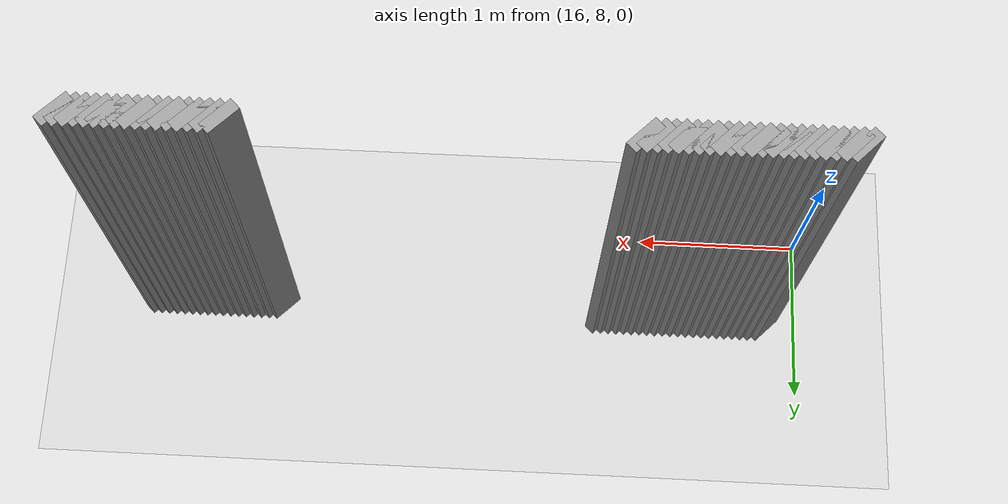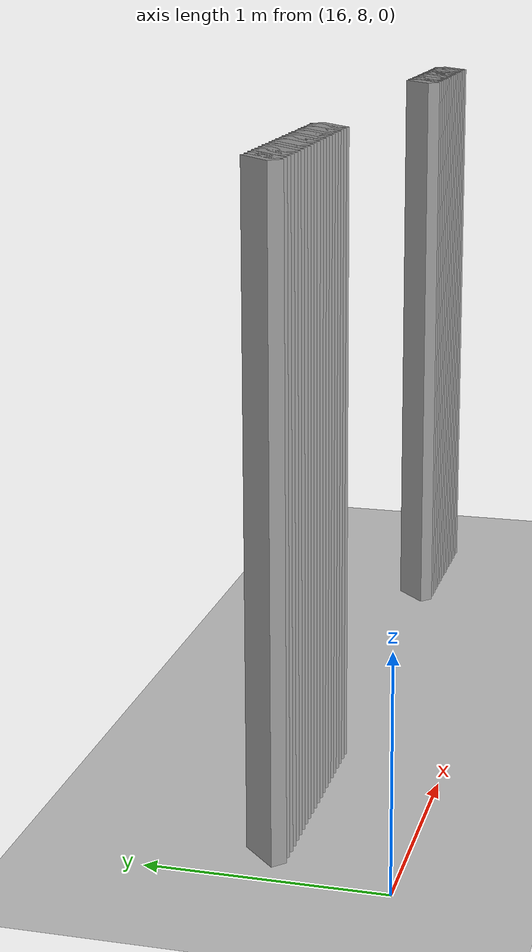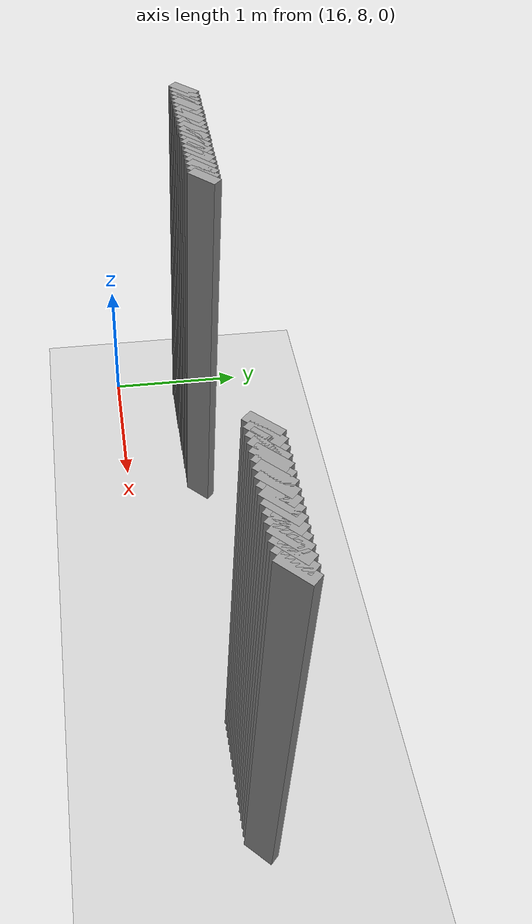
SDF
<sdf version="1.5">
 <world name="default">
  <include><uri>model://ground_plane</uri></include>
  <include><uri>model://sun</uri></include>
  <model name="grey_wall_3939">
   <static>1</static>
   <link name="link">
    <pose>16.2 8.55  1.4 0 0 -0.785398163397</pose>
    <collision name="collision"><geometry><box><size>0.0707106781187 .2  2.8</size></box></geometry></collision>
    <visual name="visual">
     <cast_shadows>0</cast_shadows>
     <geometry><box><size>0.0707106781187 .2  2.8</size></box></geometry>
     <material>
      <script>
       <uri>model://grey_wall/materials/scripts</uri>
       <uri>model://grey_wall/materials/textures</uri>
       <name>vrc/grey_wall</name>
      </script>
     </material>
    </visual>
   </link>
  </model>
  <model name="grey_wall_3940">
   <static>1</static>
   <link name="link">
    <pose>16.25 8.55  1.4 0 0 -0.785398163397</pose>
    <collision name="collision"><geometry><box><size>0.0707106781187 .2  2.8</size></box></geometry></collision>
    <visual name="visual">
     <cast_shadows>0</cast_shadows>
     <geometry><box><size>0.0707106781187 .2  2.8</size></box></geometry>
     <material>
      <script>
       <uri>model://grey_wall/materials/scripts</uri>
       <uri>model://grey_wall/materials/textures</uri>
       <name>vrc/grey_wall</name>
      </script>
     </material>
    </visual>
   </link>
  </model>
  <model name="grey_wall_3941">
   <static>1</static>
   <link name="link">
    <pose>16.3 8.55  1.4 0 0 -0.785398163397</pose>
    <collision name="collision"><geometry><box><size>0.0707106781187 .2  2.8</size></box></geometry></collision>
    <visual name="visual">
     <cast_shadows>0</cast_shadows>
     <geometry><box><size>0.0707106781187 .2  2.8</size></box></geometry>
     <material>
      <script>
       <uri>model://grey_wall/materials/scripts</uri>
       <uri>model://grey_wall/materials/textures</uri>
       <name>vrc/grey_wall</name>
      </script>
     </material>
    </visual>
   </link>
  </model>
  <model name="grey_wall_3942">
   <static>1</static>
   <link name="link">
    <pose>16.35 8.55  1.4 0 0 -0.785398163397</pose>
    <collision name="collision"><geometry><box><size>0.0707106781187 .2  2.8</size></box></geometry></collision>
    <visual name="visual">
     <cast_shadows>0</cast_shadows>
     <geometry><box><size>0.0707106781187 .2  2.8</size></box></geometry>
     <material>
      <script>
       <uri>model://grey_wall/materials/scripts</uri>
       <uri>model://grey_wall/materials/textures</uri>
       <name>vrc/grey_wall</name>
      </script>
     </material>
    </visual>
   </link>
  </model>
  <model name="grey_wall_3943">
   <static>1</static>
   <link name="link">
    <pose>16.4 8.55  1.4 0 0 -0.785398163397</pose>
    <collision name="collision"><geometry><box><size>0.0707106781187 .2  2.8</size></box></geometry></collision>
    <visual name="visual">
     <cast_shadows>0</cast_shadows>
     <geometry><box><size>0.0707106781187 .2  2.8</size></box></geometry>
     <material>
      <script>
       <uri>model://grey_wall/materials/scripts</uri>
       <uri>model://grey_wall/materials/textures</uri>
       <name>vrc/grey_wall</name>
      </script>
     </material>
    </visual>
   </link>
  </model>
  <model name="grey_wall_3944">
   <static>1</static>
   <link name="link">
    <pose>16.45 8.55  1.4 0 0 -0.785398163397</pose>
    <collision name="collision"><geometry><box><size>0.0707106781187 .2  2.8</size></box></geometry></collision>
    <visual name="visual">
     <cast_shadows>0</cast_shadows>
     <geometry><box><size>0.0707106781187 .2  2.8</size></box></geometry>
     <material>
      <script>
       <uri>model://grey_wall/materials/scripts</uri>
       <uri>model://grey_wall/materials/textures</uri>
       <name>vrc/grey_wall</name>
      </script>
     </material>
    </visual>
   </link>
  </model>
  <model name="grey_wall_3945">
   <static>1</static>
   <link name="link">
    <pose>16.5 8.55  1.4 0 0 -0.785398163397</pose>
    <collision name="collision"><geometry><box><size>0.0707106781187 .2  2.8</size></box></geometry></collision>
    <visual name="visual">
     <cast_shadows>0</cast_shadows>
     <geometry><box><size>0.0707106781187 .2  2.8</size></box></geometry>
     <material>
      <script>
       <uri>model://grey_wall/materials/scripts</uri>
       <uri>model://grey_wall/materials/textures</uri>
       <name>vrc/grey_wall</name>
      </script>
     </material>
    </visual>
   </link>
  </model>
  <model name="grey_wall_3946">
   <static>1</static>
   <link name="link">
    <pose>16.55 8.55  1.4 0 0 -0.785398163397</pose>
    <collision name="collision"><geometry><box><size>0.0707106781187 .2  2.8</size></box></geometry></collision>
    <visual name="visual">
     <cast_shadows>0</cast_shadows>
     <geometry><box><size>0.0707106781187 .2  2.8</size></box></geometry>
     <material>
      <script>
       <uri>model://grey_wall/materials/scripts</uri>
       <uri>model://grey_wall/materials/textures</uri>
       <name>vrc/grey_wall</name>
      </script>
     </material>
    </visual>
   </link>
  </model>
  <model name="grey_wall_3947">
   <static>1</static>
   <link name="link">
    <pose>16.6 8.55  1.4 0 0 -0.785398163397</pose>
    <collision name="collision"><geometry><box><size>0.0707106781187 .2  2.8</size></box></geometry></collision>
    <visual name="visual">
     <cast_shadows>0</cast_shadows>
     <geometry><box><size>0.0707106781187 .2  2.8</size></box></geometry>
     <material>
      <script>
       <uri>model://grey_wall/materials/scripts</uri>
       <uri>model://grey_wall/materials/textures</uri>
       <name>vrc/grey_wall</name>
      </script>
     </material>
    </visual>
   </link>
  </model>
  <model name="grey_wall_3948">
   <static>1</static>
   <link name="link">
    <pose>16.65 8.55  1.4 0 0 -0.785398163397</pose>
    <collision name="collision"><geometry><box><size>0.0707106781187 .2  2.8</size></box></geometry></collision>
    <visual name="visual">
     <cast_shadows>0</cast_shadows>
     <geometry><box><size>0.0707106781187 .2  2.8</size></box></geometry>
     <material>
      <script>
       <uri>model://grey_wall/materials/scripts</uri>
       <uri>model://grey_wall/materials/textures</uri>
       <name>vrc/grey_wall</name>
      </script>
     </material>
    </visual>
   </link>
  </model>
  <model name="grey_wall_3949">
   <static>1</static>
   <link name="link">
    <pose>16.7 8.55  1.4 0 0 -0.785398163397</pose>
    <collision name="collision"><geometry><box><size>0.0707106781187 .2  2.8</size></box></geometry></collision>
    <visual name="visual">
     <cast_shadows>0</cast_shadows>
     <geometry><box><size>0.0707106781187 .2  2.8</size></box></geometry>
     <material>
      <script>
       <uri>model://grey_wall/materials/scripts</uri>
       <uri>model://grey_wall/materials/textures</uri>
       <name>vrc/grey_wall</name>
      </script>
     </material>
    </visual>
   </link>
  </model>
  <model name="grey_wall_3950">
   <static>1</static>
   <link name="link">
    <pose>16.75 8.55  1.4 0 0 -0.785398163397</pose>
    <collision name="collision"><geometry><box><size>0.0707106781187 .2  2.8</size></box></geometry></collision>
    <visual name="visual">
     <cast_shadows>0</cast_shadows>
     <geometry><box><size>0.0707106781187 .2  2.8</size></box></geometry>
     <material>
      <script>
       <uri>model://grey_wall/materials/scripts</uri>
       <uri>model://grey_wall/materials/textures</uri>
       <name>vrc/grey_wall</name>
      </script>
     </material>
    </visual>
   </link>
  </model>
  <model name="grey_wall_3951">
   <static>1</static>
   <link name="link">
    <pose>16.8 8.55  1.4 0 0 -0.785398163397</pose>
    <collision name="collision"><geometry><box><size>0.0707106781187 .2  2.8</size></box></geometry></collision>
    <visual name="visual">
     <cast_shadows>0</cast_shadows>
     <geometry><box><size>0.0707106781187 .2  2.8</size></box></geometry>
     <material>
      <script>
       <uri>model://grey_wall/materials/scripts</uri>
       <uri>model://grey_wall/materials/textures</uri>
       <name>vrc/grey_wall</name>
      </script>
     </material>
    </visual>
   </link>
  </model>
  <model name="grey_wall_3952">
   <static>1</static>
   <link name="link">
    <pose>16.85 8.55  1.4 0 0 -0.785398163397</pose>
    <collision name="collision"><geometry><box><size>0.0707106781187 .2  2.8</size></box></geometry></collision>
    <visual name="visual">
     <cast_shadows>0</cast_shadows>
     <geometry><box><size>0.0707106781187 .2  2.8</size></box></geometry>
     <material>
      <script>
       <uri>model://grey_wall/materials/scripts</uri>
       <uri>model://grey_wall/materials/textures</uri>
       <name>vrc/grey_wall</name>
      </script>
     </material>
    </visual>
   </link>
  </model>
  <model name="grey_wall_3953">
   <static>1</static>
   <link name="link">
    <pose>16.9 8.55  1.4 0 0 -0.785398163397</pose>
    <collision name="collision"><geometry><box><size>0.0707106781187 .2  2.8</size></box></geometry></collision>
    <visual name="visual">
     <cast_shadows>0</cast_shadows>
     <geometry><box><size>0.0707106781187 .2  2.8</size></box></geometry>
     <material>
      <script>
       <uri>model://grey_wall/materials/scripts</uri>
       <uri>model://grey_wall/materials/textures</uri>
       <name>vrc/grey_wall</name>
      </script>
     </material>
    </visual>
   </link>
  </model>
  <model name="grey_wall_3954">
   <static>1</static>
   <link name="link">
    <pose>16.95 8.55  1.4 0 0 -0.785398163397</pose>
    <collision name="collision"><geometry><box><size>0.0707106781187 .2  2.8</size></box></geometry></collision>
    <visual name="visual">
     <cast_shadows>0</cast_shadows>
     <geometry><box><size>0.0707106781187 .2  2.8</size></box></geometry>
     <material>
      <script>
       <uri>model://grey_wall/materials/scripts</uri>
       <uri>model://grey_wall/materials/textures</uri>
       <name>vrc/grey_wall</name>
      </script>
     </material>
    </visual>
   </link>
  </model>
  <model name="grey_wall_3955">
   <static>1</static>
   <link name="link">
    <pose>17.0 8.55  1.4 0 0 -0.785398163397</pose>
    <collision name="collision"><geometry><box><size>0.0707106781187 .2  2.8</size></box></geometry></collision>
    <visual name="visual">
     <cast_shadows>0</cast_shadows>
     <geometry><box><size>0.0707106781187 .2  2.8</size></box></geometry>
     <material>
      <script>
       <uri>model://grey_wall/materials/scripts</uri>
       <uri>model://grey_wall/materials/textures</uri>
       <name>vrc/grey_wall</name>
      </script>
     </material>
    </visual>
   </link>
  </model>
  <model name="grey_wall_3956">
   <static>1</static>
   <link name="link">
    <pose>17.05 8.55  1.4 0 0 -0.785398163397</pose>
    <collision name="collision"><geometry><box><size>0.0707106781187 .2  2.8</size></box></geometry></collision>
    <visual name="visual">
     <cast_shadows>0</cast_shadows>
     <geometry><box><size>0.0707106781187 .2  2.8</size></box></geometry>
     <material>
      <script>
       <uri>model://grey_wall/materials/scripts</uri>
       <uri>model://grey_wall/materials/textures</uri>
       <name>vrc/grey_wall</name>
      </script>
     </material>
    </visual>
   </link>
  </model>
  <model name="grey_wall_3957">
   <static>1</static>
   <link name="link">
    <pose>17.1 8.55  1.4 0 0 -0.785398163397</pose>
    <collision name="collision"><geometry><box><size>0.0707106781187 .2  2.8</size></box></geometry></collision>
    <visual name="visual">
     <cast_shadows>0</cast_shadows>
     <geometry><box><size>0.0707106781187 .2  2.8</size></box></geometry>
     <material>
      <script>
       <uri>model://grey_wall/materials/scripts</uri>
       <uri>model://grey_wall/materials/textures</uri>
       <name>vrc/grey_wall</name>
      </script>
     </material>
    </visual>
   </link>
  </model>
  <model name="grey_wall_3958">
   <static>1</static>
   <link name="link">
    <pose>17.15 8.55  1.4 0 0 -0.785398163397</pose>
    <collision name="collision"><geometry><box><size>0.0707106781187 .2  2.8</size></box></geometry></collision>
    <visual name="visual">
     <cast_shadows>0</cast_shadows>
     <geometry><box><size>0.0707106781187 .2  2.8</size></box></geometry>
     <material>
      <script>
       <uri>model://grey_wall/materials/scripts</uri>
       <uri>model://grey_wall/materials/textures</uri>
       <name>vrc/grey_wall</name>
      </script>
     </material>
    </visual>
   </link>
  </model>
  <model name="grey_wall_3959">
   <static>1</static>
   <link name="link">
    <pose>17.2 8.55  1.4 0 0 -0.785398163397</pose>
    <collision name="collision"><geometry><box><size>0.0707106781187 .2  2.8</size></box></geometry></collision>
    <visual name="visual">
     <cast_shadows>0</cast_shadows>
     <geometry><box><size>0.0707106781187 .2  2.8</size></box></geometry>
     <material>
      <script>
       <uri>model://grey_wall/materials/scripts</uri>
       <uri>model://grey_wall/materials/textures</uri>
       <name>vrc/grey_wall</name>
      </script>
     </material>
    </visual>
   </link>
  </model>
  <model name="grey_wall_3960">
   <static>1</static>
   <link name="link">
    <pose>17.25 8.55  1.4 0 0 -0.785398163397</pose>
    <collision name="collision"><geometry><box><size>0.0707106781187 .2  2.8</size></box></geometry></collision>
    <visual name="visual">
     <cast_shadows>0</cast_shadows>
     <geometry><box><size>0.0707106781187 .2  2.8</size></box></geometry>
     <material>
      <script>
       <uri>model://grey_wall/materials/scripts</uri>
       <uri>model://grey_wall/materials/textures</uri>
       <name>vrc/grey_wall</name>
      </script>
     </material>
    </visual>
   </link>
  </model>
  <model name="grey_wall_3961">
   <static>1</static>
   <link name="link">
    <pose>19.3 8.55  1.4 0 0 -0.785398163397</pose>
    <collision name="collision"><geometry><box><size>0.0707106781187 .2  2.8</size></box></geometry></collision>
    <visual name="visual">
     <cast_shadows>0</cast_shadows>
     <geometry><box><size>0.0707106781187 .2  2.8</size></box></geometry>
     <material>
      <script>
       <uri>model://grey_wall/materials/scripts</uri>
       <uri>model://grey_wall/materials/textures</uri>
       <name>vrc/grey_wall</name>
      </script>
     </material>
    </visual>
   </link>
  </model>
  <model name="grey_wall_3962">
   <static>1</static>
   <link name="link">
    <pose>19.35 8.55  1.4 0 0 -0.785398163397</pose>
    <collision name="collision"><geometry><box><size>0.0707106781187 .2  2.8</size></box></geometry></collision>
    <visual name="visual">
     <cast_shadows>0</cast_shadows>
     <geometry><box><size>0.0707106781187 .2  2.8</size></box></geometry>
     <material>
      <script>
       <uri>model://grey_wall/materials/scripts</uri>
       <uri>model://grey_wall/materials/textures</uri>
       <name>vrc/grey_wall</name>
      </script>
     </material>
    </visual>
   </link>
  </model>
  <model name="grey_wall_3963">
   <static>1</static>
   <link name="link">
    <pose>19.4 8.55  1.4 0 0 -0.785398163397</pose>
    <collision name="collision"><geometry><box><size>0.0707106781187 .2  2.8</size></box></geometry></collision>
    <visual name="visual">
     <cast_shadows>0</cast_shadows>
     <geometry><box><size>0.0707106781187 .2  2.8</size></box></geometry>
     <material>
      <script>
       <uri>model://grey_wall/materials/scripts</uri>
       <uri>model://grey_wall/materials/textures</uri>
       <name>vrc/grey_wall</name>
      </script>
     </material>
    </visual>
   </link>
  </model>
  <model name="grey_wall_3964">
   <static>1</static>
   <link name="link">
    <pose>19.45 8.55  1.4 0 0 -0.785398163397</pose>
    <collision name="collision"><geometry><box><size>0.0707106781187 .2  2.8</size></box></geometry></collision>
    <visual name="visual">
     <cast_shadows>0</cast_shadows>
     <geometry><box><size>0.0707106781187 .2  2.8</size></box></geometry>
     <material>
      <script>
       <uri>model://grey_wall/materials/scripts</uri>
       <uri>model://grey_wall/materials/textures</uri>
       <name>vrc/grey_wall</name>
      </script>
     </material>
    </visual>
   </link>
  </model>
  <model name="grey_wall_3965">
   <static>1</static>
   <link name="link">
    <pose>19.5 8.55  1.4 0 0 -0.785398163397</pose>
    <collision name="collision"><geometry><box><size>0.0707106781187 .2  2.8</size></box></geometry></collision>
    <visual name="visual">
     <cast_shadows>0</cast_shadows>
     <geometry><box><size>0.0707106781187 .2  2.8</size></box></geometry>
     <material>
      <script>
       <uri>model://grey_wall/materials/scripts</uri>
       <uri>model://grey_wall/materials/textures</uri>
       <name>vrc/grey_wall</name>
      </script>
     </material>
    </visual>
   </link>
  </model>
  <model name="grey_wall_3966">
   <static>1</static>
   <link name="link">
    <pose>19.55 8.55  1.4 0 0 -0.785398163397</pose>
    <collision name="collision"><geometry><box><size>0.0707106781187 .2  2.8</size></box></geometry></collision>
    <visual name="visual">
     <cast_shadows>0</cast_shadows>
     <geometry><box><size>0.0707106781187 .2  2.8</size></box></geometry>
     <material>
      <script>
       <uri>model://grey_wall/materials/scripts</uri>
       <uri>model://grey_wall/materials/textures</uri>
       <name>vrc/grey_wall</name>
      </script>
     </material>
    </visual>
   </link>
  </model>
  <model name="grey_wall_3967">
   <static>1</static>
   <link name="link">
    <pose>19.6 8.55  1.4 0 0 -0.785398163397</pose>
    <collision name="collision"><geometry><box><size>0.0707106781187 .2  2.8</size></box></geometry></collision>
    <visual name="visual">
     <cast_shadows>0</cast_shadows>
     <geometry><box><size>0.0707106781187 .2  2.8</size></box></geometry>
     <material>
      <script>
       <uri>model://grey_wall/materials/scripts</uri>
       <uri>model://grey_wall/materials/textures</uri>
       <name>vrc/grey_wall</name>
      </script>
     </material>
    </visual>
   </link>
  </model>
  <model name="grey_wall_3968">
   <static>1</static>
   <link name="link">
    <pose>19.65 8.55  1.4 0 0 -0.785398163397</pose>
    <collision name="collision"><geometry><box><size>0.0707106781187 .2  2.8</size></box></geometry></collision>
    <visual name="visual">
     <cast_shadows>0</cast_shadows>
     <geometry><box><size>0.0707106781187 .2  2.8</size></box></geometry>
     <material>
      <script>
       <uri>model://grey_wall/materials/scripts</uri>
       <uri>model://grey_wall/materials/textures</uri>
       <name>vrc/grey_wall</name>
      </script>
     </material>
    </visual>
   </link>
  </model>
  <model name="grey_wall_3969">
   <static>1</static>
   <link name="link">
    <pose>19.7 8.55  1.4 0 0 -0.785398163397</pose>
    <collision name="collision"><geometry><box><size>0.0707106781187 .2  2.8</size></box></geometry></collision>
    <visual name="visual">
     <cast_shadows>0</cast_shadows>
     <geometry><box><size>0.0707106781187 .2  2.8</size></box></geometry>
     <material>
      <script>
       <uri>model://grey_wall/materials/scripts</uri>
       <uri>model://grey_wall/materials/textures</uri>
       <name>vrc/grey_wall</name>
      </script>
     </material>
    </visual>
   </link>
  </model>
  <model name="grey_wall_3970">
   <static>1</static>
   <link name="link">
    <pose>19.75 8.55  1.4 0 0 -0.785398163397</pose>
    <collision name="collision"><geometry><box><size>0.0707106781187 .2  2.8</size></box></geometry></collision>
    <visual name="visual">
     <cast_shadows>0</cast_shadows>
     <geometry><box><size>0.0707106781187 .2  2.8</size></box></geometry>
     <material>
      <script>
       <uri>model://grey_wall/materials/scripts</uri>
       <uri>model://grey_wall/materials/textures</uri>
       <name>vrc/grey_wall</name>
      </script>
     </material>
    </visual>
   </link>
  </model>
  <model name="grey_wall_3971">
   <static>1</static>
   <link name="link">
    <pose>19.8 8.55  1.4 0 0 -0.785398163397</pose>
    <collision name="collision"><geometry><box><size>0.0707106781187 .2  2.8</size></box></geometry></collision>
    <visual name="visual">
     <cast_shadows>0</cast_shadows>
     <geometry><box><size>0.0707106781187 .2  2.8</size></box></geometry>
     <material>
      <script>
       <uri>model://grey_wall/materials/scripts</uri>
       <uri>model://grey_wall/materials/textures</uri>
       <name>vrc/grey_wall</name>
      </script>
     </material>
    </visual>
   </link>
  </model>
  <model name="grey_wall_3972">
   <static>1</static>
   <link name="link">
    <pose>19.85 8.55  1.4 0 0 -0.785398163397</pose>
    <collision name="collision"><geometry><box><size>0.0707106781187 .2  2.8</size></box></geometry></collision>
    <visual name="visual">
     <cast_shadows>0</cast_shadows>
     <geometry><box><size>0.0707106781187 .2  2.8</size></box></geometry>
     <material>
      <script>
       <uri>model://grey_wall/materials/scripts</uri>
       <uri>model://grey_wall/materials/textures</uri>
       <name>vrc/grey_wall</name>
      </script>
     </material>
    </visual>
   </link>
  </model>
  <model name="grey_wall_3973">
   <static>1</static>
   <link name="link">
    <pose>19.9 8.55  1.4 0 0 -0.785398163397</pose>
    <collision name="collision"><geometry><box><size>0.0707106781187 .2  2.8</size></box></geometry></collision>
    <visual name="visual">
     <cast_shadows>0</cast_shadows>
     <geometry><box><size>0.0707106781187 .2  2.8</size></box></geometry>
     <material>
      <script>
       <uri>model://grey_wall/materials/scripts</uri>
       <uri>model://grey_wall/materials/textures</uri>
       <name>vrc/grey_wall</name>
      </script>
     </material>
    </visual>
   </link>
  </model>
  <model name="grey_wall_3974">
   <static>1</static>
   <link name="link">
    <pose>19.95 8.55  1.4 0 0 -0.785398163397</pose>
    <collision name="collision"><geometry><box><size>0.0707106781187 .2  2.8</size></box></geometry></collision>
    <visual name="visual">
     <cast_shadows>0</cast_shadows>
     <geometry><box><size>0.0707106781187 .2  2.8</size></box></geometry>
     <material>
      <script>
       <uri>model://grey_wall/materials/scripts</uri>
       <uri>model://grey_wall/materials/textures</uri>
       <name>vrc/grey_wall</name>
      </script>
     </material>
    </visual>
   </link>
  </model>
  <model name="grey_wall_3975">
   <static>1</static>
   <link name="link">
    <pose>20.0 8.55  1.4 0 0 -0.785398163397</pose>
    <collision name="collision"><geometry><box><size>0.0707106781187 .2  2.8</size></box></geometry></collision>
    <visual name="visual">
     <cast_shadows>0</cast_shadows>
     <geometry><box><size>0.0707106781187 .2  2.8</size></box></geometry>
     <material>
      <script>
       <uri>model://grey_wall/materials/scripts</uri>
       <uri>model://grey_wall/materials/textures</uri>
       <name>vrc/grey_wall</name>
      </script>
     </material>
    </visual>
   </link>
  </model>
  <model name="grey_wall_3976">
   <static>1</static>
   <link name="link">
    <pose>20.05 8.55  1.4 0 0 -0.785398163397</pose>
    <collision name="collision"><geometry><box><size>0.0707106781187 .2  2.8</size></box></geometry></collision>
    <visual name="visual">
     <cast_shadows>0</cast_shadows>
     <geometry><box><size>0.0707106781187 .2  2.8</size></box></geometry>
     <material>
      <script>
       <uri>model://grey_wall/materials/scripts</uri>
       <uri>model://grey_wall/materials/textures</uri>
       <name>vrc/grey_wall</name>
      </script>
     </material>
    </visual>
   </link>
  </model>
  <model name="grey_wall_3977">
   <static>1</static>
   <link name="link">
    <pose>20.1 8.55  1.4 0 0 -0.785398163397</pose>
    <collision name="collision"><geometry><box><size>0.0707106781187 .2  2.8</size></box></geometry></collision>
    <visual name="visual">
     <cast_shadows>0</cast_shadows>
     <geometry><box><size>0.0707106781187 .2  2.8</size></box></geometry>
     <material>
      <script>
       <uri>model://grey_wall/materials/scripts</uri>
       <uri>model://grey_wall/materials/textures</uri>
       <name>vrc/grey_wall</name>
      </script>
     </material>
    </visual>
   </link>
  </model>
 </world>
</sdf>
